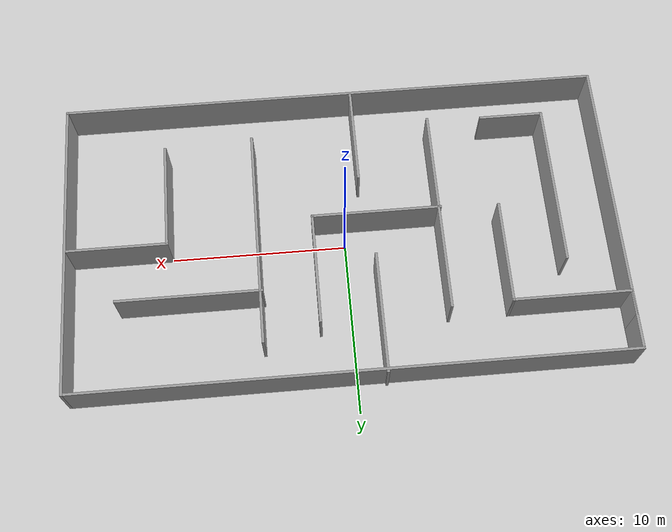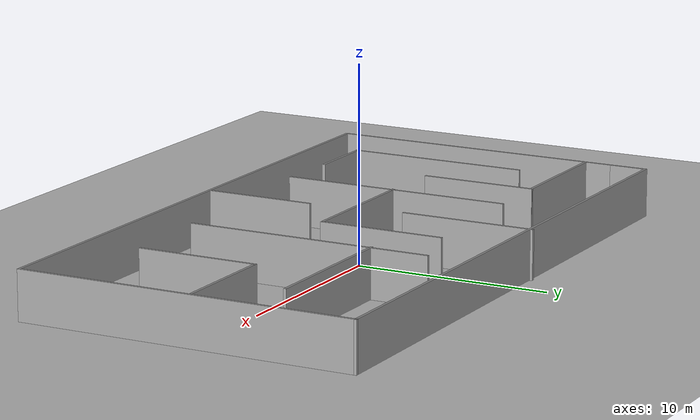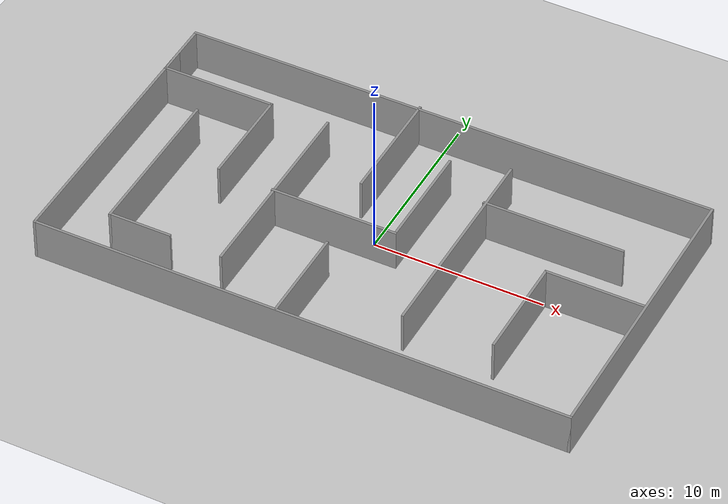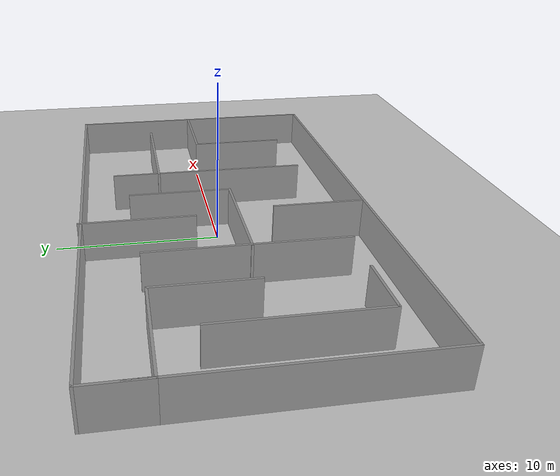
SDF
<sdf version="1.7">
 <world name="default">
  <light name="sun" type="directional">
   <pose>0 0 10 0 -0 0</pose>
   <diffuse>0.8 0.8 0.8 1</diffuse>
   <specular>0.2 0.2 0.2 1</specular>
   <attenuation>
    <range>1000</range>
    <constant>0.9</constant>
    <linear>0.01</linear>
    <quadratic>0.001</quadratic>
   </attenuation>
   <direction>-0.5 0.1 -0.9</direction>
   <spot><inner_angle>0</inner_angle><outer_angle>0</outer_angle><falloff>0</falloff></spot>
  </light>
  <model name="ground_plane">
   <static>1</static>
   <link name="link">
    <collision name="collision">
     <geometry><plane><normal>0 0 1</normal><size>100 100</size></plane></geometry>
     <surface><friction><ode><mu>100</mu><mu2>50</mu2></ode></friction></surface>
    </collision>
    <visual name="visual">
     <cast_shadows>0</cast_shadows>
     <geometry><plane><normal>0 0 1</normal><size>100 100</size></plane></geometry>
     <material>
      <script><uri>file://media/materials/scripts/gazebo.material</uri><name>Gazebo/Grey</name></script>
     </material>
    </visual>
   </link>
  </model>
  <gravity>0 0 -9.8</gravity>
  <magnetic_field>6e-06 2.3e-05 -4.2e-05</magnetic_field>
  <atmosphere type="adiabatic"/>
  <physics type="ode">
   <max_step_size>0.001</max_step_size>
   <real_time_factor>1</real_time_factor>
   <real_time_update_rate>1000</real_time_update_rate>
  </physics>
  <scene><ambient>0.4 0.4 0.4 1</ambient><background>0.7 0.7 0.7 1</background><shadows>1</shadows></scene>
  <audio><device>default</device></audio>
  <spherical_coordinates>
   <surface_model>EARTH_WGS84</surface_model>
   <latitude_deg>0</latitude_deg>
   <longitude_deg>0</longitude_deg>
   <elevation>0</elevation>
   <heading_deg>0</heading_deg>
  </spherical_coordinates>
  <model name="midRoom">
   <pose>0.156977 -0.306193 0 0 -0 0</pose>
   <link name="Wall_0">
    <collision name="Wall_0_Collision">
     <geometry><box><size>15.5 0.15 2.5</size></box></geometry>
     <pose>0 0 1.25 0 -0 0</pose>
    </collision>
    <visual name="Wall_0_Visual">
     <pose>0 0 1.25 0 -0 0</pose>
     <geometry><box><size>15.5 0.15 2.5</size></box></geometry>
     <material>
      <script><uri>file://media/materials/scripts/gazebo.material</uri><name>Gazebo/Grey</name></script>
      <ambient>1 1 1 1</ambient>
     </material>
     <meta><layer>0</layer></meta>
    </visual>
    <pose>-15.675 -1.0702 0 0 -0 -1.5708</pose>
   </link>
   <link name="Wall_1">
    <collision name="Wall_1_Collision">
     <geometry><box><size>31.5 0.15 2.5</size></box></geometry>
     <pose>0 0 1.25 0 -0 0</pose>
    </collision>
    <visual name="Wall_1_Visual">
     <pose>0 0 1.25 0 -0 0</pose>
     <geometry><box><size>31.5 0.15 2.5</size></box></geometry>
     <material>
      <script><uri>file://media/materials/scripts/gazebo.material</uri><name>Gazebo/Grey</name></script>
      <ambient>1 1 1 1</ambient>
     </material>
     <meta><layer>0</layer></meta>
    </visual>
    <pose>0 -8.7452 0 0 -0 0</pose>
   </link>
   <link name="Wall_11">
    <collision name="Wall_11_Collision">
     <geometry><box><size>12 0.15 2.5</size></box></geometry>
     <pose>0 0 1.25 0 -0 0</pose>
    </collision>
    <visual name="Wall_11_Visual">
     <pose>0 0 1.25 0 -0 0</pose>
     <geometry><box><size>12 0.15 2.5</size></box></geometry>
     <material>
      <script><uri>file://media/materials/scripts/gazebo.material</uri><name>Gazebo/Grey</name></script>
      <ambient>1 1 1 1</ambient>
     </material>
     <meta><layer>0</layer></meta>
    </visual>
    <pose>-5.64202 -0.614783 0 0 -0 -1.5708</pose>
   </link>
   <link name="Wall_13">
    <collision name="Wall_13_Collision">
     <geometry><box><size>7.5 0.15 2.5</size></box></geometry>
     <pose>0 0 1.25 0 -0 0</pose>
    </collision>
    <visual name="Wall_13_Visual">
     <pose>0 0 1.25 0 -0 0</pose>
     <geometry><box><size>7.5 0.15 2.5</size></box></geometry>
     <material>
      <script><uri>file://media/materials/scripts/gazebo.material</uri><name>Gazebo/Grey</name></script>
      <ambient>1 1 1 1</ambient>
     </material>
     <meta><layer>0</layer></meta>
    </visual>
    <pose>-2.04793 -0.75812 0 0 -0 0</pose>
   </link>
   <link name="Wall_14">
    <collision name="Wall_14_Collision">
     <geometry><box><size>6.5 0.15 2.5</size></box></geometry>
     <pose>0 0 1.25 0 -0 0</pose>
    </collision>
    <visual name="Wall_14_Visual">
     <pose>0 0 1.25 0 -0 0</pose>
     <geometry><box><size>6.5 0.15 2.5</size></box></geometry>
     <material>
      <script><uri>file://media/materials/scripts/gazebo.material</uri><name>Gazebo/Grey</name></script>
      <ambient>1 1 1 1</ambient>
     </material>
     <meta><layer>0</layer></meta>
    </visual>
    <pose>1.62707 2.41688 0 0 -0 1.5708</pose>
   </link>
   <link name="Wall_16">
    <collision name="Wall_16_Collision">
     <geometry><box><size>7 0.15 2.5</size></box></geometry>
     <pose>0 0 1.25 0 -0 0</pose>
    </collision>
    <visual name="Wall_16_Visual">
     <pose>0 0 1.25 0 -0 0</pose>
     <geometry><box><size>7 0.15 2.5</size></box></geometry>
     <material>
      <script><uri>file://media/materials/scripts/gazebo.material</uri><name>Gazebo/Grey</name></script>
      <ambient>1 1 1 1</ambient>
     </material>
     <meta><layer>0</layer></meta>
    </visual>
    <pose>-1.78172 5.3202 0 0 -0 -1.5708</pose>
   </link>
   <link name="Wall_19">
    <collision name="Wall_19_Collision">
     <geometry><box><size>12.75 0.15 2.5</size></box></geometry>
     <pose>0 0 1.25 0 -0 0</pose>
    </collision>
    <visual name="Wall_19_Visual">
     <pose>0 0 1.25 0 -0 0</pose>
     <geometry><box><size>12.75 0.15 2.5</size></box></geometry>
     <material>
      <script><uri>file://media/materials/scripts/gazebo.material</uri><name>Gazebo/Grey</name></script>
      <ambient>1 1 1 1</ambient>
     </material>
     <meta><layer>0</layer></meta>
    </visual>
    <pose>4.82467 0.212057 0 0 -0 -1.5708</pose>
   </link>
   <link name="Wall_2">
    <collision name="Wall_2_Collision">
     <geometry><box><size>17.5 0.15 2.5</size></box></geometry>
     <pose>0 0 1.25 0 -0 0</pose>
    </collision>
    <visual name="Wall_2_Visual">
     <pose>0 0 1.25 0 -0 0</pose>
     <geometry><box><size>17.5 0.15 2.5</size></box></geometry>
     <material>
      <script><uri>file://media/materials/scripts/gazebo.material</uri><name>Gazebo/Grey</name></script>
      <ambient>1 1 1 1</ambient>
     </material>
     <meta><layer>0</layer></meta>
    </visual>
    <pose>15.675 -0.070204 0 0 -0 1.5708</pose>
   </link>
   <link name="Wall_21">
    <collision name="Wall_21_Collision">
     <geometry><box><size>5.75 0.15 2.5</size></box></geometry>
     <pose>0 0 1.25 0 -0 0</pose>
    </collision>
    <visual name="Wall_21_Visual">
     <pose>0 0 1.25 0 -0 0</pose>
     <geometry><box><size>5.75 0.15 2.5</size></box></geometry>
     <material>
      <script><uri>file://media/materials/scripts/gazebo.material</uri><name>Gazebo/Grey</name></script>
      <ambient>1 1 1 1</ambient>
     </material>
     <meta><layer>0</layer></meta>
    </visual>
    <pose>12.7252 0.277852 0 0 -0 3.14159</pose>
   </link>
   <link name="Wall_22">
    <collision name="Wall_22_Collision">
     <geometry><box><size>6.25 0.15 2.5</size></box></geometry>
     <pose>0 0 1.25 0 -0 0</pose>
    </collision>
    <visual name="Wall_22_Visual">
     <pose>0 0 1.25 0 -0 0</pose>
     <geometry><box><size>6.25 0.15 2.5</size></box></geometry>
     <material>
      <script><uri>file://media/materials/scripts/gazebo.material</uri><name>Gazebo/Grey</name></script>
      <ambient>1 1 1 1</ambient>
     </material>
     <meta><layer>0</layer></meta>
    </visual>
    <pose>9.92517 -2.77215 0 0 -0 -1.5708</pose>
   </link>
   <link name="Wall_24">
    <collision name="Wall_24_Collision">
     <geometry><box><size>8.25 0.15 2.5</size></box></geometry>
     <pose>0 0 1.25 0 -0 0</pose>
    </collision>
    <visual name="Wall_24_Visual">
     <pose>0 0 1.25 0 -0 0</pose>
     <geometry><box><size>8.25 0.15 2.5</size></box></geometry>
     <material>
      <script><uri>file://media/materials/scripts/gazebo.material</uri><name>Gazebo/Grey</name></script>
      <ambient>1 1 1 1</ambient>
     </material>
     <meta><layer>0</layer></meta>
    </visual>
    <pose>8.78163 3.53453 0 0 -0 0</pose>
   </link>
   <link name="Wall_26">
    <collision name="Wall_26_Collision">
     <geometry><box><size>5.75 0.15 2.5</size></box></geometry>
     <pose>0 0 1.25 0 -0 0</pose>
    </collision>
    <visual name="Wall_26_Visual">
     <pose>0 0 1.25 0 -0 0</pose>
     <geometry><box><size>5.75 0.15 2.5</size></box></geometry>
     <material>
      <script><uri>file://media/materials/scripts/gazebo.material</uri><name>Gazebo/Grey</name></script>
      <ambient>1 1 1 1</ambient>
     </material>
     <meta><layer>0</layer></meta>
    </visual>
    <pose>-1.22343 -5.87187 0 0 -0 -1.5708</pose>
   </link>
   <link name="Wall_3">
    <collision name="Wall_3_Collision">
     <geometry><box><size>31.5 0.15 2.5</size></box></geometry>
     <pose>0 0 1.25 0 -0 0</pose>
    </collision>
    <visual name="Wall_3_Visual">
     <pose>0 0 1.25 0 -0 0</pose>
     <geometry><box><size>31.5 0.15 2.5</size></box></geometry>
     <material>
      <script><uri>file://media/materials/scripts/gazebo.material</uri><name>Gazebo/Grey</name></script>
      <ambient>1 1 1 1</ambient>
     </material>
     <meta><layer>0</layer></meta>
    </visual>
    <pose>0 8.6048 0 0 -0 3.14159</pose>
   </link>
   <link name="Wall_4">
    <collision name="Wall_4_Collision">
     <geometry><box><size>3.5 0.15 2.5</size></box></geometry>
     <pose>0 0 1.25 0 -0 0</pose>
    </collision>
    <visual name="Wall_4_Visual">
     <pose>0 0 1.25 0 -0 0</pose>
     <geometry><box><size>3.5 0.15 2.5</size></box></geometry>
     <material>
      <script><uri>file://media/materials/scripts/gazebo.material</uri><name>Gazebo/Grey</name></script>
      <ambient>1 1 1 1</ambient>
     </material>
     <meta><layer>0</layer></meta>
    </visual>
    <pose>-15.675 6.9298 0 0 -0 -1.5708</pose>
   </link>
   <link name="Wall_5">
    <collision name="Wall_5_Collision">
     <geometry><box><size>6.75 0.15 2.5</size></box></geometry>
     <pose>0 0 1.25 0 -0 0</pose>
    </collision>
    <visual name="Wall_5_Visual">
     <pose>0 0 1.25 0 -0 0</pose>
     <geometry><box><size>6.75 0.15 2.5</size></box></geometry>
     <material>
      <script><uri>file://media/materials/scripts/gazebo.material</uri><name>Gazebo/Grey</name></script>
      <ambient>1 1 1 1</ambient>
     </material>
     <meta><layer>0</layer></meta>
    </visual>
    <pose>-12.375 5.25479 0 0 -0 0</pose>
   </link>
   <link name="Wall_6">
    <collision name="Wall_6_Collision">
     <geometry><box><size>6 0.15 2.5</size></box></geometry>
     <pose>0 0 1.25 0 -0 0</pose>
    </collision>
    <visual name="Wall_6_Visual">
     <pose>0 0 1.25 0 -0 0</pose>
     <geometry><box><size>6 0.15 2.5</size></box></geometry>
     <material>
      <script><uri>file://media/materials/scripts/gazebo.material</uri><name>Gazebo/Grey</name></script>
      <ambient>1 1 1 1</ambient>
     </material>
     <meta><layer>0</layer></meta>
    </visual>
    <pose>-9.075 2.32979 0 0 -0 -1.5708</pose>
   </link>
   <link name="Wall_8">
    <collision name="Wall_8_Collision">
     <geometry><box><size>9.5 0.15 2.5</size></box></geometry>
     <pose>0 0 1.25 0 -0 0</pose>
    </collision>
    <visual name="Wall_8_Visual">
     <pose>0 0 1.25 0 -0 0</pose>
     <geometry><box><size>9.5 0.15 2.5</size></box></geometry>
     <material>
      <script><uri>file://media/materials/scripts/gazebo.material</uri><name>Gazebo/Grey</name></script>
      <ambient>1 1 1 1</ambient>
     </material>
     <meta><layer>0</layer></meta>
    </visual>
    <pose>-12.4386 -1.71121 0 0 -0 -1.5708</pose>
   </link>
   <link name="Wall_9">
    <collision name="Wall_9_Collision">
     <geometry><box><size>3.75 0.15 2.5</size></box></geometry>
     <pose>0 0 1.25 0 -0 0</pose>
    </collision>
    <visual name="Wall_9_Visual">
     <pose>0 0 1.25 0 -0 0</pose>
     <geometry><box><size>3.75 0.15 2.5</size></box></geometry>
     <material>
      <script><uri>file://media/materials/scripts/gazebo.material</uri><name>Gazebo/Grey</name></script>
      <ambient>1 1 1 1</ambient>
     </material>
     <meta><layer>0</layer></meta>
    </visual>
    <pose>-10.6386 -6.38621 0 0 -0 0</pose>
   </link>
   <static>1</static>
  </model>
 </world>
</sdf>
